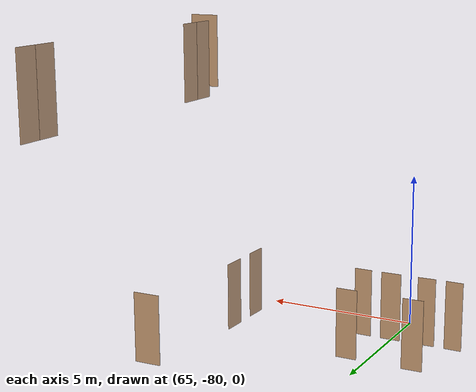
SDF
<sdf version="1.7">
 <world name="sim_world">
  <model name="cancan6">
   <pose>62.96837446320492 -78.30326167062383 0.0 0 0 -0.012798277267650381</pose>
   <link name="right">
    <pose>0 0 1.11 0 0 0</pose>
    <visual name="right_visual">
     <geometry><box><size>0.5512130897196971 0.03 2.2</size></box></geometry>
     <material>
      <ambient>0.5 0.25 0 0.6</ambient>
      <diffuse>0.5 0.25 0 0.6</diffuse>
      <pbr><metal><metalness>0.0</metalness></metal></pbr>
     </material>
    </visual>
    <collision name="right_collision">
     <geometry><box><size>0.5512130897196971 0.03 2.2</size></box></geometry>
     <surface><contact><collide_bitmask>0x02</collide_bitmask></contact></surface>
    </collision>
    <inertial>
     <mass>50.0</mass>
     <inertia><ixx>20.17041666666667</ixx><iyy>21.432649459493067</iyy><izz>1.269732792826395</izz></inertia>
    </inertial>
   </link>
   <joint name="right_joint" type="revolute">
    <parent>world</parent>
    <child>right</child>
    <axis><xyz>0 0 1</xyz><limit><lower>0</lower><upper>1.57</upper></limit></axis>
    <pose>0.28060654485984854 0 0 0 0 0</pose>
   </joint>
   <plugin name="register_component" filename="libregister_component.so">
    <component name="Door">
     <v_max_door>0.5</v_max_door>
     <a_max_door>0.3</a_max_door>
     <a_nom_door>0.15</a_nom_door>
     <dx_min_door>0.01</dx_min_door>
     <f_max_door>500.0</f_max_door>
     <ros_interface>true</ros_interface>
     <door name="cancan6" type="SwingDoor" left_joint_name="empty_joint" right_joint_name="right_joint"/>
    </component>
   </plugin>
  </model>
  <model name="cancan5">
   <pose>63.861602509570446 -78.29441838414718 0.0 0 0 -3.0986250525104793</pose>
   <link name="right">
    <pose>0 0 1.11 0 0 0</pose>
    <visual name="right_visual">
     <geometry><box><size>0.5689616097071877 0.03 2.2</size></box></geometry>
     <material>
      <ambient>0.5 0.25 0 0.6</ambient>
      <diffuse>0.5 0.25 0 0.6</diffuse>
      <pbr><metal><metalness>0.0</metalness></metal></pbr>
     </material>
    </visual>
    <collision name="right_collision">
     <geometry><box><size>0.5689616097071877 0.03 2.2</size></box></geometry>
     <surface><contact><collide_bitmask>0x02</collide_bitmask></contact></surface>
    </collision>
    <inertial>
     <mass>50.0</mass>
     <inertia><ixx>20.17041666666667</ixx><iyy>21.51548880550248</iyy><izz>1.3525721388358092</izz></inertia>
    </inertial>
   </link>
   <joint name="right_joint" type="revolute">
    <parent>world</parent>
    <child>right</child>
    <axis><xyz>0 0 -1</xyz><limit><lower>0</lower><upper>1.57</upper></limit></axis>
    <pose>0.28948080485359384 0 0 0 0 0</pose>
   </joint>
   <plugin name="register_component" filename="libregister_component.so">
    <component name="Door">
     <v_max_door>0.5</v_max_door>
     <a_max_door>0.3</a_max_door>
     <a_nom_door>0.15</a_nom_door>
     <dx_min_door>0.01</dx_min_door>
     <f_max_door>500.0</f_max_door>
     <ros_interface>true</ros_interface>
     <door name="cancan5" type="SwingDoor" left_joint_name="empty_joint" right_joint_name="right_joint"/>
    </component>
   </plugin>
  </model>
  <model name="bancan4">
   <pose>65.04022854881379 -78.27887529814444 0.0 0 0 0.009430149761953626</pose>
   <link name="right">
    <pose>0 0 1.11 0 0 0</pose>
    <visual name="right_visual">
     <geometry><box><size>0.6493030552441421 0.03 2.2</size></box></geometry>
     <material>
      <ambient>0.5 0.25 0 0.6</ambient>
      <diffuse>0.5 0.25 0 0.6</diffuse>
      <pbr><metal><metalness>0.0</metalness></metal></pbr>
     </material>
    </visual>
    <collision name="right_collision">
     <geometry><box><size>0.6493030552441421 0.03 2.2</size></box></geometry>
     <surface><contact><collide_bitmask>0x02</collide_bitmask></contact></surface>
    </collision>
    <inertial>
     <mass>50.0</mass>
     <inertia><ixx>20.17041666666667</ixx><iyy>21.92331023978908</iyy><izz>1.7603935731224063</izz></inertia>
    </inertial>
   </link>
   <joint name="right_joint" type="revolute">
    <parent>world</parent>
    <child>right</child>
    <axis><xyz>0 0 1</xyz><limit><lower>0</lower><upper>1.57</upper></limit></axis>
    <pose>0.32965152762207106 0 0 0 0 0</pose>
   </joint>
   <plugin name="register_component" filename="libregister_component.so">
    <component name="Door">
     <v_max_door>0.5</v_max_door>
     <a_max_door>0.3</a_max_door>
     <a_nom_door>0.15</a_nom_door>
     <dx_min_door>0.01</dx_min_door>
     <f_max_door>500.0</f_max_door>
     <ros_interface>true</ros_interface>
     <door name="bancan4" type="SwingDoor" left_joint_name="empty_joint" right_joint_name="right_joint"/>
    </component>
   </plugin>
  </model>
  <model name="cancan3">
   <pose>65.9874141096206 -78.28000876506593 0.0 0 0 3.1268591754535766</pose>
   <link name="right">
    <pose>0 0 1.11 0 0 0</pose>
    <visual name="right_visual">
     <geometry><box><size>0.5658636979061031 0.03 2.2</size></box></geometry>
     <material>
      <ambient>0.5 0.25 0 0.6</ambient>
      <diffuse>0.5 0.25 0 0.6</diffuse>
      <pbr><metal><metalness>0.0</metalness></metal></pbr>
     </material>
    </visual>
    <collision name="right_collision">
     <geometry><box><size>0.5658636979061031 0.03 2.2</size></box></geometry>
     <surface><contact><collide_bitmask>0x02</collide_bitmask></contact></surface>
    </collision>
    <inertial>
     <mass>50.0</mass>
     <inertia><ixx>20.17041666666667</ixx><iyy>21.500840519199876</iyy><izz>1.3379238525332064</izz></inertia>
    </inertial>
   </link>
   <joint name="right_joint" type="revolute">
    <parent>world</parent>
    <child>right</child>
    <axis><xyz>0 0 -1</xyz><limit><lower>0</lower><upper>1.57</upper></limit></axis>
    <pose>0.2879318489530516 0 0 0 0 0</pose>
   </joint>
   <plugin name="register_component" filename="libregister_component.so">
    <component name="Door">
     <v_max_door>0.5</v_max_door>
     <a_max_door>0.3</a_max_door>
     <a_nom_door>0.15</a_nom_door>
     <dx_min_door>0.01</dx_min_door>
     <f_max_door>500.0</f_max_door>
     <ros_interface>true</ros_interface>
     <door name="cancan3" type="SwingDoor" left_joint_name="empty_joint" right_joint_name="right_joint"/>
    </component>
   </plugin>
  </model>
  <model name="bancan1">
   <pose>63.532425759655325 -76.17578914874812 0.0 0 0 0.015593344452640543</pose>
   <link name="right">
    <pose>0 0 1.11 0 0 0</pose>
    <visual name="right_visual">
     <geometry><box><size>0.647827462352512 0.03 2.2</size></box></geometry>
     <material>
      <ambient>0.5 0.25 0 0.6</ambient>
      <diffuse>0.5 0.25 0 0.6</diffuse>
      <pbr><metal><metalness>0.0</metalness></metal></pbr>
     </material>
    </visual>
    <collision name="right_collision">
     <geometry><box><size>0.647827462352512 0.03 2.2</size></box></geometry>
     <surface><contact><collide_bitmask>0x02</collide_bitmask></contact></surface>
    </collision>
    <inertial>
     <mass>50.0</mass>
     <inertia><ixx>20.17041666666667</ixx><iyy>21.915335087408735</iyy><izz>1.752418420742064</izz></inertia>
    </inertial>
   </link>
   <joint name="right_joint" type="revolute">
    <parent>world</parent>
    <child>right</child>
    <axis><xyz>0 0 1</xyz><limit><lower>0</lower><upper>1.57</upper></limit></axis>
    <pose>0.328913731176256 0 0 0 0 0</pose>
   </joint>
   <plugin name="register_component" filename="libregister_component.so">
    <component name="Door">
     <v_max_door>0.5</v_max_door>
     <a_max_door>0.3</a_max_door>
     <a_nom_door>0.15</a_nom_door>
     <dx_min_door>0.01</dx_min_door>
     <f_max_door>500.0</f_max_door>
     <ros_interface>true</ros_interface>
     <door name="bancan1" type="SwingDoor" left_joint_name="empty_joint" right_joint_name="right_joint"/>
    </component>
   </plugin>
  </model>
  <model name="cancan2">
   <pose>65.64942774056314 -76.17066049148946 0.0 0 0 0.0</pose>
   <link name="right">
    <pose>0 0 1.11 0 0 0</pose>
    <visual name="right_visual">
     <geometry><box><size>0.6658829585567838 0.03 2.2</size></box></geometry>
     <material>
      <ambient>0.5 0.25 0 0.6</ambient>
      <diffuse>0.5 0.25 0 0.6</diffuse>
      <pbr><metal><metalness>0.0</metalness></metal></pbr>
     </material>
    </visual>
    <collision name="right_collision">
     <geometry><box><size>0.6658829585567838 0.03 2.2</size></box></geometry>
     <surface><contact><collide_bitmask>0x02</collide_bitmask></contact></surface>
    </collision>
    <inertial>
     <mass>50.0</mass>
     <inertia><ixx>20.17041666666667</ixx><iyy>22.014167143734735</iyy><izz>1.8512504770680647</izz></inertia>
    </inertial>
   </link>
   <joint name="right_joint" type="revolute">
    <parent>world</parent>
    <child>right</child>
    <axis><xyz>0 0 1</xyz><limit><lower>0</lower><upper>1.57</upper></limit></axis>
    <pose>0.3379414792783919 0 0 0 0 0</pose>
   </joint>
   <plugin name="register_component" filename="libregister_component.so">
    <component name="Door">
     <v_max_door>0.5</v_max_door>
     <a_max_door>0.3</a_max_door>
     <a_nom_door>0.15</a_nom_door>
     <dx_min_door>0.01</dx_min_door>
     <f_max_door>500.0</f_max_door>
     <ros_interface>true</ros_interface>
     <door name="cancan2" type="SwingDoor" left_joint_name="empty_joint" right_joint_name="right_joint"/>
    </component>
   </plugin>
  </model>
  <model name="can7">
   <pose>70.06035354413558 -77.11813783586021 0.0 0 0 1.549233235089427</pose>
   <link name="right">
    <pose>0 0 1.11 0 0 0</pose>
    <visual name="right_visual">
     <geometry><box><size>0.7728128371704641 0.03 2.2</size></box></geometry>
     <material>
      <ambient>0.5 0.25 0 0.6</ambient>
      <diffuse>0.5 0.25 0 0.6</diffuse>
      <pbr><metal><metalness>0.0</metalness></metal></pbr>
     </material>
    </visual>
    <collision name="right_collision">
     <geometry><box><size>0.7728128371704641 0.03 2.2</size></box></geometry>
     <surface><contact><collide_bitmask>0x02</collide_bitmask></contact></surface>
    </collision>
    <inertial>
     <mass>50.0</mass>
     <inertia><ixx>20.17041666666667</ixx><iyy>22.655165338731095</iyy><izz>2.4922486720644264</izz></inertia>
    </inertial>
   </link>
   <joint name="right_joint" type="revolute">
    <parent>world</parent>
    <child>right</child>
    <axis><xyz>0 0 -1</xyz><limit><lower>0</lower><upper>1.57</upper></limit></axis>
    <pose>0.39140641858523206 0 0 0 0 0</pose>
   </joint>
   <plugin name="register_component" filename="libregister_component.so">
    <component name="Door">
     <v_max_door>0.5</v_max_door>
     <a_max_door>0.3</a_max_door>
     <a_nom_door>0.15</a_nom_door>
     <dx_min_door>0.01</dx_min_door>
     <f_max_door>500.0</f_max_door>
     <ros_interface>true</ros_interface>
     <door name="can7" type="SwingDoor" left_joint_name="empty_joint" right_joint_name="right_joint"/>
    </component>
   </plugin>
  </model>
  <model name="can8">
   <pose>70.04037759244974 -78.55145725909793 0.0 0 0 1.5402560482815513</pose>
   <link name="right">
    <pose>0 0 1.11 0 0 0</pose>
    <visual name="right_visual">
     <geometry><box><size>0.7456228934420266 0.03 2.2</size></box></geometry>
     <material>
      <ambient>0.5 0.25 0 0.6</ambient>
      <diffuse>0.5 0.25 0 0.6</diffuse>
      <pbr><metal><metalness>0.0</metalness></metal></pbr>
     </material>
    </visual>
    <collision name="right_collision">
     <geometry><box><size>0.7456228934420266 0.03 2.2</size></box></geometry>
     <surface><contact><collide_bitmask>0x02</collide_bitmask></contact></surface>
    </collision>
    <inertial>
     <mass>50.0</mass>
     <inertia><ixx>20.17041666666667</ixx><iyy>22.483139580103586</iyy><izz>2.3202229134369157</izz></inertia>
    </inertial>
   </link>
   <joint name="right_joint" type="revolute">
    <parent>world</parent>
    <child>right</child>
    <axis><xyz>0 0 -1</xyz><limit><lower>0</lower><upper>1.57</upper></limit></axis>
    <pose>0.3778114467210133 0 0 0 0 0</pose>
   </joint>
   <plugin name="register_component" filename="libregister_component.so">
    <component name="Door">
     <v_max_door>0.5</v_max_door>
     <a_max_door>0.3</a_max_door>
     <a_nom_door>0.15</a_nom_door>
     <dx_min_door>0.01</dx_min_door>
     <f_max_door>500.0</f_max_door>
     <ros_interface>true</ros_interface>
     <door name="can8" type="SwingDoor" left_joint_name="empty_joint" right_joint_name="right_joint"/>
    </component>
   </plugin>
  </model>
  <model name="can1">
   <pose>70.7878485261773 -73.05168497442074 0.0 0 0 0.021507412331041125</pose>
   <link name="right">
    <pose>0 0 1.11 0 0 0</pose>
    <visual name="right_visual">
     <geometry><box><size>0.8468522677860504 0.03 2.2</size></box></geometry>
     <material>
      <ambient>0.5 0.25 0 0.6</ambient>
      <diffuse>0.5 0.25 0 0.6</diffuse>
      <pbr><metal><metalness>0.0</metalness></metal></pbr>
     </material>
    </visual>
    <collision name="right_collision">
     <geometry><box><size>0.8468522677860504 0.03 2.2</size></box></geometry>
     <surface><contact><collide_bitmask>0x02</collide_bitmask></contact></surface>
    </collision>
    <inertial>
     <mass>50.0</mass>
     <inertia><ixx>20.17041666666667</ixx><iyy>23.15482818105991</iyy><izz>2.991911514393235</izz></inertia>
    </inertial>
   </link>
   <joint name="right_joint" type="revolute">
    <parent>world</parent>
    <child>right</child>
    <axis><xyz>0 0 1</xyz><limit><lower>0</lower><upper>1.57</upper></limit></axis>
    <pose>0.4284261338930252 0 0 0 0 0</pose>
   </joint>
   <plugin name="register_component" filename="libregister_component.so">
    <component name="Door">
     <v_max_door>0.5</v_max_door>
     <a_max_door>0.3</a_max_door>
     <a_nom_door>0.15</a_nom_door>
     <dx_min_door>0.01</dx_min_door>
     <f_max_door>500.0</f_max_door>
     <ros_interface>true</ros_interface>
     <door name="can1" type="SwingDoor" left_joint_name="empty_joint" right_joint_name="right_joint"/>
    </component>
   </plugin>
  </model>
  <model name="TD0107AI">
   <pose>69.42261503695126 -66.85896645383062 8.0 0 0 -1.571123505096818</pose>
   <link name="right">
    <pose>0.33253889292192323 0 1.11 0 0 0</pose>
    <visual name="right_visual">
     <geometry><box><size>0.6550777858438465 0.03 2.2</size></box></geometry>
     <material>
      <ambient>0.5 0.25 0 0.6</ambient>
      <diffuse>0.5 0.25 0 0.6</diffuse>
      <pbr><metal><metalness>0.0</metalness></metal></pbr>
     </material>
    </visual>
    <collision name="right_collision">
     <geometry><box><size>0.6550777858438465 0.03 2.2</size></box></geometry>
     <surface><contact><collide_bitmask>0x02</collide_bitmask></contact></surface>
    </collision>
    <inertial>
     <mass>50.0</mass>
     <inertia><ixx>20.17041666666667</ixx><iyy>21.954695439608656</iyy><izz>1.791778772941985</izz></inertia>
    </inertial>
   </link>
   <joint name="right_joint" type="revolute">
    <parent>world</parent>
    <child>right</child>
    <axis><xyz>0 0 -1</xyz><limit><lower>0</lower><upper>1.57</upper></limit></axis>
    <pose>0.33253889292192323 0 0 0 0 0</pose>
   </joint>
   <link name="left">
    <pose>-0.33253889292192323 0 1.11 0 0 0</pose>
    <visual name="left_visual">
     <geometry><box><size>0.6550777858438465 0.03 2.2</size></box></geometry>
     <material>
      <ambient>0.5 0.25 0 0.6</ambient>
      <diffuse>0.5 0.25 0 0.6</diffuse>
      <pbr><metal><metalness>0.0</metalness></metal></pbr>
     </material>
    </visual>
    <collision name="left_collision">
     <geometry><box><size>0.6550777858438465 0.03 2.2</size></box></geometry>
     <surface><contact><collide_bitmask>0x02</collide_bitmask></contact></surface>
    </collision>
    <inertial>
     <mass>50.0</mass>
     <inertia><ixx>20.17041666666667</ixx><iyy>21.954695439608656</iyy><izz>1.791778772941985</izz></inertia>
    </inertial>
   </link>
   <joint name="left_joint" type="revolute">
    <parent>world</parent>
    <child>left</child>
    <axis><xyz>0 0 -1</xyz><limit><lower>-1.57</lower><upper>0</upper></limit></axis>
    <pose>-0.33253889292192323 0 0 0 0 0</pose>
   </joint>
   <plugin name="register_component" filename="libregister_component.so">
    <component name="Door">
     <v_max_door>0.5</v_max_door>
     <a_max_door>0.3</a_max_door>
     <a_nom_door>0.15</a_nom_door>
     <dx_min_door>0.01</dx_min_door>
     <f_max_door>500.0</f_max_door>
     <ros_interface>true</ros_interface>
     <door name="TD0107AI" type="DoubleSwingDoor" left_joint_name="left_joint" right_joint_name="right_joint"/>
    </component>
   </plugin>
  </model>
  <model name="TD0106AI">
   <pose>69.42705745066247 -73.93064066868044 8.0 0 0 -1.5619125662999749</pose>
   <link name="right">
    <pose>0.3371586841216713 0 1.11 0 0 0</pose>
    <visual name="right_visual">
     <geometry><box><size>0.6643173682433426 0.03 2.2</size></box></geometry>
     <material>
      <ambient>0.5 0.25 0 0.6</ambient>
      <diffuse>0.5 0.25 0 0.6</diffuse>
      <pbr><metal><metalness>0.0</metalness></metal></pbr>
     </material>
    </visual>
    <collision name="right_collision">
     <geometry><box><size>0.6643173682433426 0.03 2.2</size></box></geometry>
     <surface><contact><collide_bitmask>0x02</collide_bitmask></contact></surface>
    </collision>
    <inertial>
     <mass>50.0</mass>
     <inertia><ixx>20.17041666666667</ixx><iyy>22.005489857290673</iyy><izz>1.842573190624004</izz></inertia>
    </inertial>
   </link>
   <joint name="right_joint" type="revolute">
    <parent>world</parent>
    <child>right</child>
    <axis><xyz>0 0 -1</xyz><limit><lower>0</lower><upper>1.57</upper></limit></axis>
    <pose>0.3371586841216713 0 0 0 0 0</pose>
   </joint>
   <link name="left">
    <pose>-0.3371586841216713 0 1.11 0 0 0</pose>
    <visual name="left_visual">
     <geometry><box><size>0.6643173682433426 0.03 2.2</size></box></geometry>
     <material>
      <ambient>0.5 0.25 0 0.6</ambient>
      <diffuse>0.5 0.25 0 0.6</diffuse>
      <pbr><metal><metalness>0.0</metalness></metal></pbr>
     </material>
    </visual>
    <collision name="left_collision">
     <geometry><box><size>0.6643173682433426 0.03 2.2</size></box></geometry>
     <surface><contact><collide_bitmask>0x02</collide_bitmask></contact></surface>
    </collision>
    <inertial>
     <mass>50.0</mass>
     <inertia><ixx>20.17041666666667</ixx><iyy>22.005489857290673</iyy><izz>1.842573190624004</izz></inertia>
    </inertial>
   </link>
   <joint name="left_joint" type="revolute">
    <parent>world</parent>
    <child>left</child>
    <axis><xyz>0 0 -1</xyz><limit><lower>-1.57</lower><upper>0</upper></limit></axis>
    <pose>-0.3371586841216713 0 0 0 0 0</pose>
   </joint>
   <plugin name="register_component" filename="libregister_component.so">
    <component name="Door">
     <v_max_door>0.5</v_max_door>
     <a_max_door>0.3</a_max_door>
     <a_nom_door>0.15</a_nom_door>
     <dx_min_door>0.01</dx_min_door>
     <f_max_door>500.0</f_max_door>
     <ros_interface>true</ros_interface>
     <door name="TD0106AI" type="DoubleSwingDoor" left_joint_name="left_joint" right_joint_name="right_joint"/>
    </component>
   </plugin>
  </model>
  <model name="TD0118CP3">
   <pose>70.69289519193421 -76.50925675459348 8.0 0 0 -3.1202965498709876</pose>
   <link name="right">
    <pose>0 0 1.11 0 0 0</pose>
    <visual name="right_visual">
     <geometry><box><size>0.8786817897678904 0.03 2.2</size></box></geometry>
     <material>
      <ambient>0.5 0.25 0 0.6</ambient>
      <diffuse>0.5 0.25 0 0.6</diffuse>
      <pbr><metal><metalness>0.0</metalness></metal></pbr>
     </material>
    </visual>
    <collision name="right_collision">
     <geometry><box><size>0.8786817897678904 0.03 2.2</size></box></geometry>
     <surface><contact><collide_bitmask>0x02</collide_bitmask></contact></surface>
    </collision>
    <inertial>
     <mass>50.0</mass>
     <inertia><ixx>20.17041666666667</ixx><iyy>23.38367369862377</iyy><izz>3.2207570319570964</izz></inertia>
    </inertial>
   </link>
   <joint name="right_joint" type="revolute">
    <parent>world</parent>
    <child>right</child>
    <axis><xyz>0 0 -1</xyz><limit><lower>0</lower><upper>1.57</upper></limit></axis>
    <pose>0.4443408948839452 0 0 0 0 0</pose>
   </joint>
   <plugin name="register_component" filename="libregister_component.so">
    <component name="Door">
     <v_max_door>0.5</v_max_door>
     <a_max_door>0.3</a_max_door>
     <a_nom_door>0.15</a_nom_door>
     <dx_min_door>0.01</dx_min_door>
     <f_max_door>500.0</f_max_door>
     <ros_interface>true</ros_interface>
     <door name="TD0118CP3" type="SwingDoor" left_joint_name="empty_joint" right_joint_name="right_joint"/>
    </component>
   </plugin>
  </model>
 </world>
</sdf>
